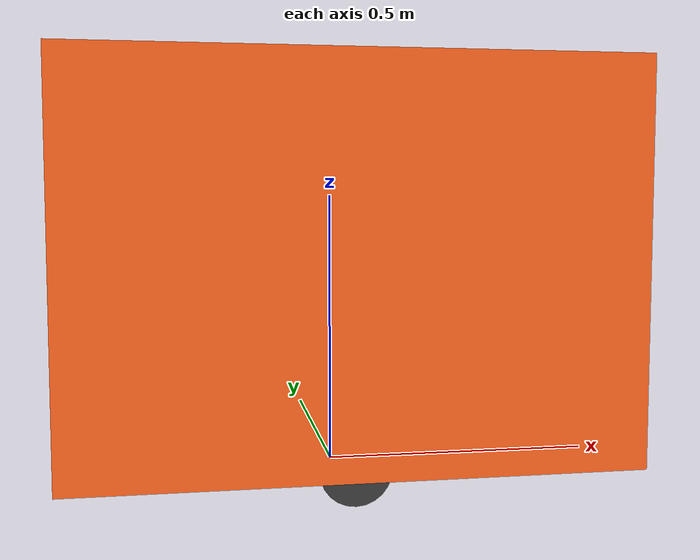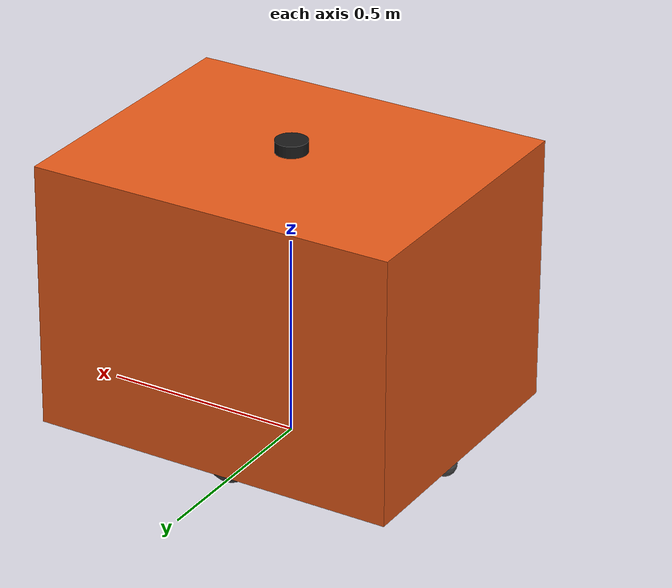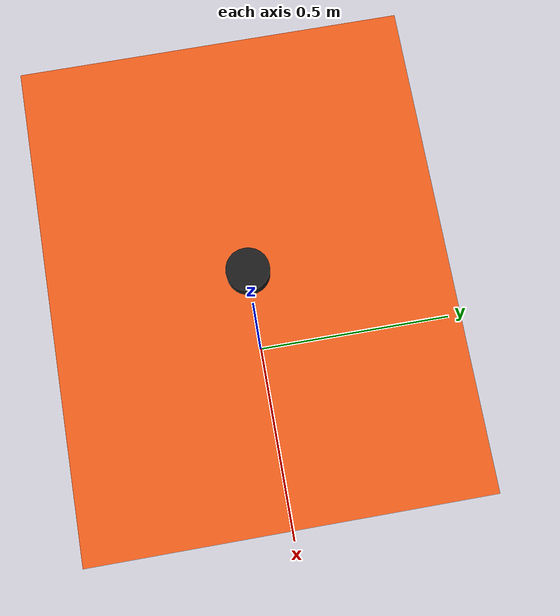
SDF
<?xml version="1.0" ?>
<sdf version="1.9">
  <model name="AMR500">
    <self_collide>false</self_collide>

    <!-- ══ Chassis ══ -->
    <link name="chassis">
      <pose>0 0 0.393000 0 0 0</pose>
      <inertial>
        <mass>150.0</mass>
        <inertia>
          <ixx>12.205700</ixx><ixy>0</ixy><ixz>0</ixz>
          <iyy>16.355700</iyy><iyz>0</iyz>
          <izz>17.472500</izz>
        </inertia>
      </inertial>
      <visual name="chassis_visual">
        <geometry><box><size>0.93 0.73 0.666</size></box></geometry>
        <material>
          <ambient>0.9 0.35 0.1 1.0</ambient>
          <diffuse>0.9 0.35 0.1 1.0</diffuse>
        </material>
      </visual>
      <collision name="chassis_collision">
        <geometry><box><size>0.93 0.73 0.666</size></box></geometry>
      </collision>
    </link>

    <!-- ══ Left Wheel ══ -->
    <link name="left_wheel">
      <pose>0 0.273750 0.060000 1.5707963268 0 0</pose>
      <inertial>
        <mass>1.0</mass>
        <inertia>
          <ixx>0.001033</ixx><ixy>0</ixy><ixz>0</ixz>
          <iyy>0.001033</iyy><iyz>0</iyz>
          <izz>0.001800</izz>
        </inertia>
      </inertial>
      <visual name="left_wheel_visual">
        <geometry><cylinder><radius>0.06</radius><length>0.04</length></cylinder></geometry>
        <material><ambient>0.2 0.2 0.2 1.0</ambient><diffuse>0.2 0.2 0.2 1.0</diffuse></material>
      </visual>
      <collision name="left_wheel_collision">
        <geometry><cylinder><radius>0.06</radius><length>0.04</length></cylinder></geometry>
        <surface><friction><ode><mu>1.0</mu><mu2>1.0</mu2></ode></friction></surface>
      </collision>
    </link>
    <joint name="left_wheel_joint" type="revolute">
      <parent>chassis</parent><child>left_wheel</child>
      <axis><xyz>0 0 1</xyz><limit><lower>-1e16</lower><upper>1e16</upper></limit></axis>
    </joint>

    <!-- ══ Right Wheel ══ -->
    <link name="right_wheel">
      <pose>0 -0.273750 0.060000 1.5707963268 0 0</pose>
      <inertial>
        <mass>1.0</mass>
        <inertia>
          <ixx>0.001033</ixx><ixy>0</ixy><ixz>0</ixz>
          <iyy>0.001033</iyy><iyz>0</iyz>
          <izz>0.001800</izz>
        </inertia>
      </inertial>
      <visual name="right_wheel_visual">
        <geometry><cylinder><radius>0.06</radius><length>0.04</length></cylinder></geometry>
        <material><ambient>0.2 0.2 0.2 1.0</ambient><diffuse>0.2 0.2 0.2 1.0</diffuse></material>
      </visual>
      <collision name="right_wheel_collision">
        <geometry><cylinder><radius>0.06</radius><length>0.04</length></cylinder></geometry>
        <surface><friction><ode><mu>1.0</mu><mu2>1.0</mu2></ode></friction></surface>
      </collision>
    </link>
    <joint name="right_wheel_joint" type="revolute">
      <parent>chassis</parent><child>right_wheel</child>
      <axis><xyz>0 0 1</xyz><limit><lower>-1e16</lower><upper>1e16</upper></limit></axis>
    </joint>

    <!-- ══ Front Caster ══ -->
    <link name="front_caster">
      <pose>0.418500 0 0.030000 0 0 0</pose>
      <inertial>
        <mass>0.5</mass>
        <inertia><ixx>0.000281</ixx><ixy>0</ixy><ixz>0</ixz><iyy>0.000281</iyy><iyz>0</iyz><izz>0.000281</izz></inertia>
      </inertial>
      <visual name="front_caster_visual">
        <geometry><sphere><radius>0.030000</radius></sphere></geometry>
        <material><ambient>0.3 0.3 0.3 1.0</ambient><diffuse>0.3 0.3 0.3 1.0</diffuse></material>
      </visual>
      <collision name="front_caster_collision">
        <geometry><sphere><radius>0.030000</radius></sphere></geometry>
        <surface><friction><ode><mu>0.01</mu><mu2>0.01</mu2></ode></friction></surface>
      </collision>
    </link>
    <joint name="front_caster_joint" type="ball"><parent>chassis</parent><child>front_caster</child></joint>

    <!-- ══ Rear Caster ══ -->
    <link name="rear_caster">
      <pose>-0.418500 0 0.030000 0 0 0</pose>
      <inertial>
        <mass>0.5</mass>
        <inertia><ixx>0.000281</ixx><ixy>0</ixy><ixz>0</ixz><iyy>0.000281</iyy><iyz>0</iyz><izz>0.000281</izz></inertia>
      </inertial>
      <visual name="rear_caster_visual">
        <geometry><sphere><radius>0.030000</radius></sphere></geometry>
        <material><ambient>0.3 0.3 0.3 1.0</ambient><diffuse>0.3 0.3 0.3 1.0</diffuse></material>
      </visual>
      <collision name="rear_caster_collision">
        <geometry><sphere><radius>0.030000</radius></sphere></geometry>
        <surface><friction><ode><mu>0.01</mu><mu2>0.01</mu2></ode></friction></surface>
      </collision>
    </link>
    <joint name="rear_caster_joint" type="ball"><parent>chassis</parent><child>rear_caster</child></joint>

    <!-- ══ DiffDrive Plugin ══ -->
    <plugin filename="gz-sim-diff-drive-system" name="gz::sim::systems::DiffDrive">
      <left_joint>left_wheel_joint</left_joint>
      <right_joint>right_wheel_joint</right_joint>
      <wheel_separation>0.5475</wheel_separation>
      <wheel_radius>0.06</wheel_radius>
      <max_linear_acceleration>1.0</max_linear_acceleration>
      <max_angular_velocity>1.57</max_angular_velocity>
      <topic>cmd_vel</topic>
      <odom_topic>odom</odom_topic>
      <tf_topic>tf</tf_topic>
      <frame_id>odom</frame_id>
      <child_frame_id>chassis</child_frame_id>
      <odom_publish_frequency>15</odom_publish_frequency>
    </plugin>

    <!-- ══ LiDAR ══ -->
    <link name="lidar_link">
      <pose>0 0 0.746000 0 0 0</pose>
      <inertial>
        <mass>0.1</mass>
        <inertia><ixx>0.000047</ixx><ixy>0</ixy><ixz>0</ixz><iyy>0.000047</iyy><iyz>0</iyz><izz>0.000080</izz></inertia>
      </inertial>
      <visual name="lidar_puck_visual">
        <geometry><cylinder><radius>0.04</radius><length>0.03</length></cylinder></geometry>
        <material><ambient>0.1 0.1 0.1 1.0</ambient><diffuse>0.1 0.1 0.1 1.0</diffuse></material>
      </visual>
      <sensor name="lidar_sensor" type="gpu_lidar">
        <always_on>true</always_on>
        <update_rate>10</update_rate>
        <visualize>true</visualize>
        <topic>lidar</topic>
        <ray>
          <scan>
            <horizontal>
              <samples>360</samples>
              <resolution>1</resolution>
              <min_angle>-3.141593</min_angle>
              <max_angle>3.141593</max_angle>
            </horizontal>
          </scan>
          <range>
            <min>0.08</min>
            <max>5.0</max>
            <resolution>0.01</resolution>
          </range>
          <noise><type>gaussian</type><mean>0.0</mean><stddev>0.03</stddev></noise>
        </ray>
      </sensor>
    </link>
    <joint name="lidar_joint" type="fixed"><parent>chassis</parent><child>lidar_link</child></joint>

    <!-- ══ IMU ══ -->
    <link name="imu_link">
      <pose>0 0 0.393000 0 0 0</pose>
      <inertial>
        <mass>0.01</mass>
        <inertia><ixx>0.000001</ixx><iyy>0.000001</iyy><izz>0.000001</izz><ixy>0</ixy><ixz>0</ixz><iyz>0</iyz></inertia>
      </inertial>
      <sensor name="imu_sensor" type="imu">
        <always_on>true</always_on>
        <update_rate>100</update_rate>
        <topic>imu</topic>
        <imu>
          <angular_velocity>
            <x><noise type="gaussian"><mean>0.0</mean><stddev>0.0523598776</stddev></noise></x>
            <y><noise type="gaussian"><mean>0.0</mean><stddev>0.0523598776</stddev></noise></y>
            <z><noise type="gaussian"><mean>0.0</mean><stddev>0.0523598776</stddev></noise></z>
          </angular_velocity>
          <linear_acceleration>
            <x><noise type="gaussian"><mean>0.0</mean><stddev>0.01</stddev></noise></x>
            <y><noise type="gaussian"><mean>0.0</mean><stddev>0.01</stddev></noise></y>
            <z><noise type="gaussian"><mean>0.0</mean><stddev>0.01</stddev></noise></z>
          </linear_acceleration>
        </imu>
      </sensor>
    </link>
    <joint name="imu_joint" type="fixed"><parent>chassis</parent><child>imu_link</child></joint>

    <plugin filename="gz-sim-joint-state-publisher-system" name="gz::sim::systems::JointStatePublisher"/>
  </model>
</sdf>
